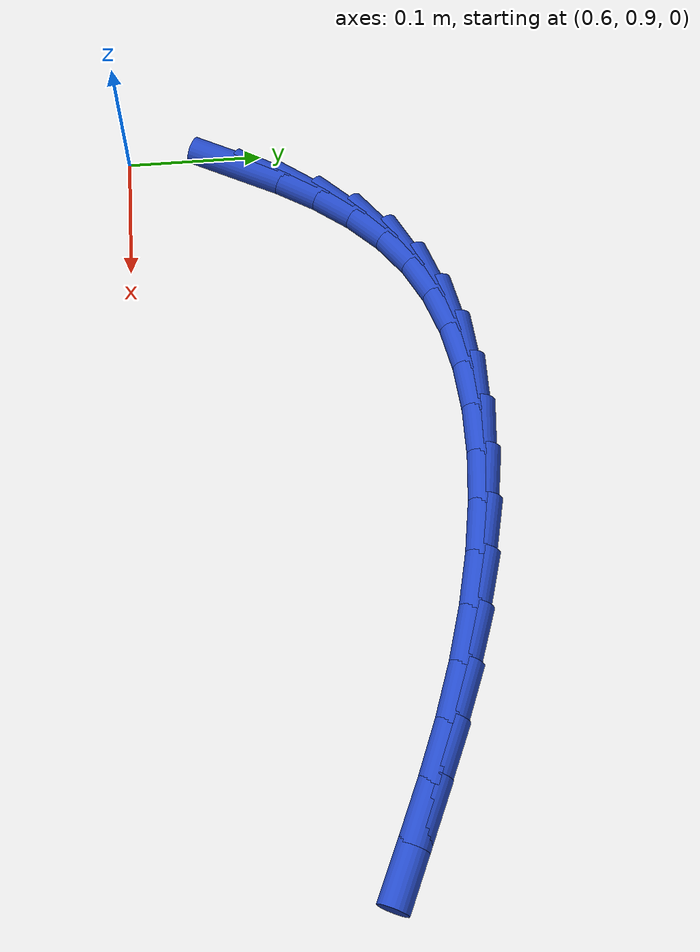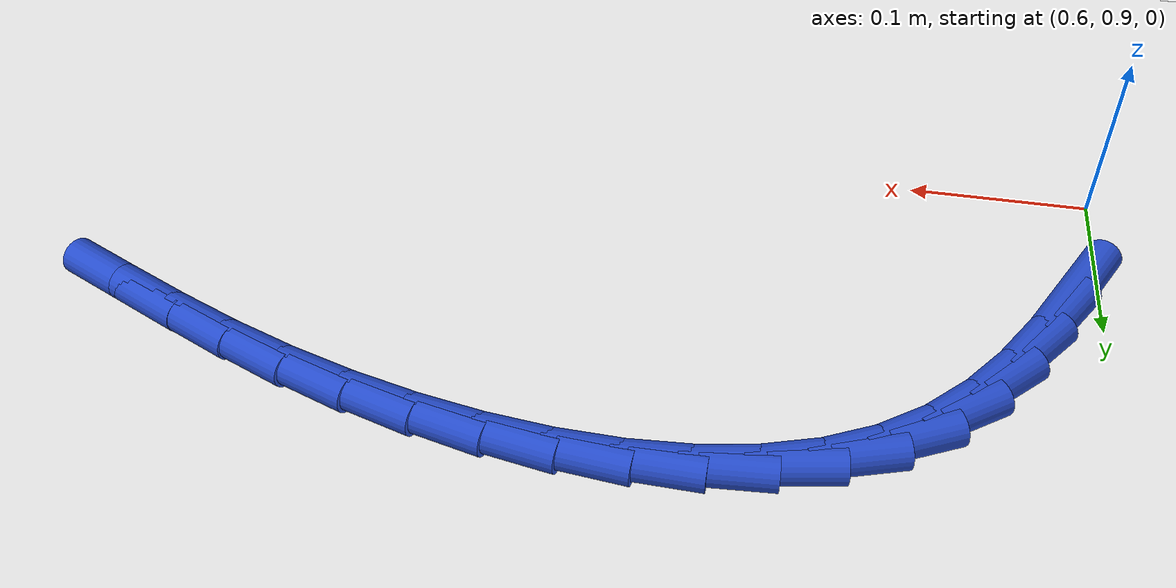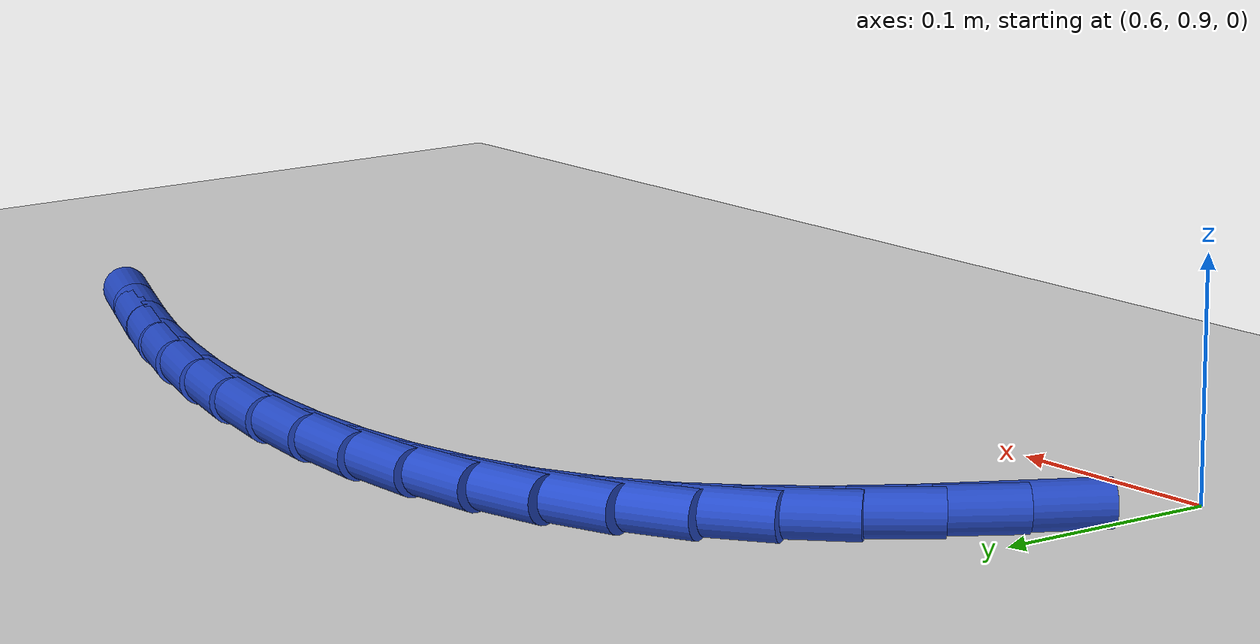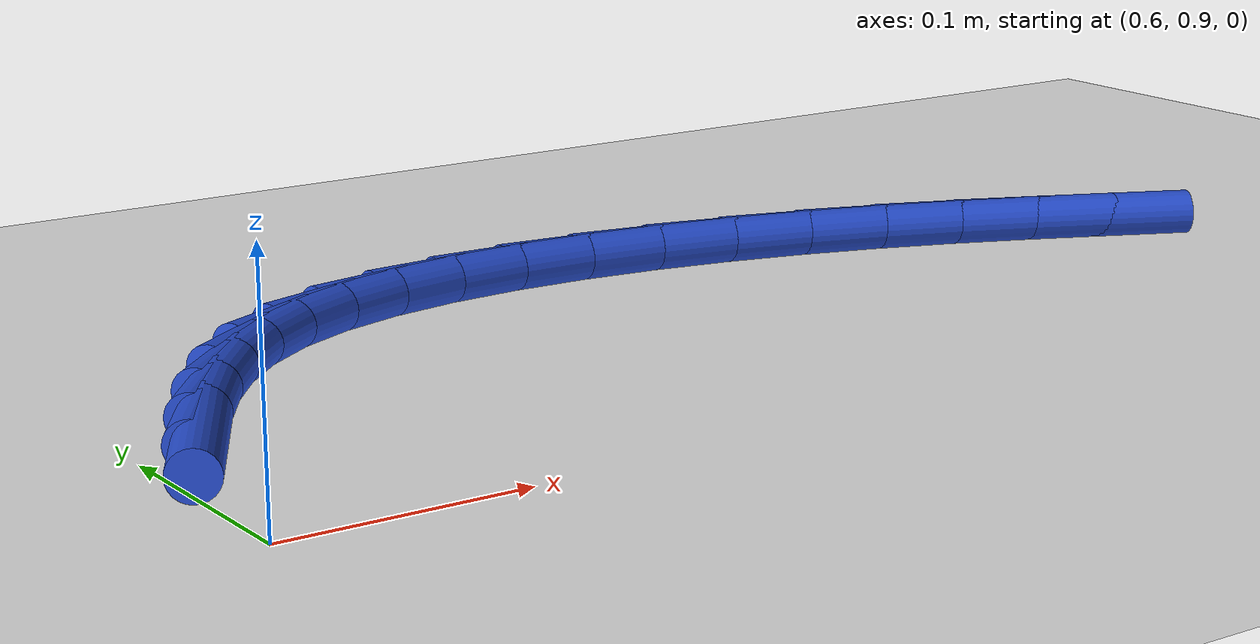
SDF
<sdf version="1.6">
 <world name="default">
  <model name="ground_plane">
   <static>1</static>
   <link name="link">
    <collision name="collision">
     <geometry><plane><normal>0 0 1</normal><size>100 100</size></plane></geometry>
     <surface><friction><ode><mu>100</mu><mu2>50</mu2></ode></friction></surface>
    </collision>
    <visual name="visual">
     <cast_shadows>0</cast_shadows>
     <geometry><plane><normal>0 0 1</normal><size>100 100</size></plane></geometry>
     <material>
      <script><uri>file://media/materials/scripts/gazebo.material</uri><name>Gazebo/WhiteGlow</name></script>
     </material>
    </visual>
   </link>
  </model>
  <model name="line">
   <link name="link_36">
    <pose>0.6163876511271378 0.9847912197336722 0.01 0 1.57 1.0728419619575362</pose>
    <collision name="collision">
     <geometry><cylinder><radius>0.01</radius><length>0.08</length></cylinder></geometry>
    </collision>
    <visual name="visual">
     <material>
      <script><name>Gazebo/Blue</name><uri>file://media/materials/scripts/gazebo.material</uri></script>
     </material>
     <geometry><cylinder><radius>0.01</radius><length>0.08</length></cylinder></geometry>
    </visual>
   </link>
   <link name="link_37">
    <pose>0.6322509721835169 1.0139705472028895 0.01 0 1.57 1.0003422529258295</pose>
    <collision name="collision">
     <geometry><cylinder><radius>0.01</radius><length>0.08</length></cylinder></geometry>
    </collision>
    <visual name="visual">
     <material>
      <script><name>Gazebo/Blue</name><uri>file://media/materials/scripts/gazebo.material</uri></script>
     </material>
     <geometry><cylinder><radius>0.01</radius><length>0.08</length></cylinder></geometry>
    </visual>
   </link>
   <link name="link_38">
    <pose>0.6495513222189545 1.0409345396289647 0.01 0 1.57 0.9010492410780814</pose>
    <collision name="collision">
     <geometry><cylinder><radius>0.01</radius><length>0.08</length></cylinder></geometry>
    </collision>
    <visual name="visual">
     <material>
      <script><name>Gazebo/Blue</name><uri>file://media/materials/scripts/gazebo.material</uri></script>
     </material>
     <geometry><cylinder><radius>0.01</radius><length>0.08</length></cylinder></geometry>
    </visual>
   </link>
   <link name="link_39">
    <pose>0.6687119050694581 1.0651320037742291 0.01 0 1.57 0.7720665639344656</pose>
    <collision name="collision">
     <geometry><cylinder><radius>0.01</radius><length>0.08</length></cylinder></geometry>
    </collision>
    <visual name="visual">
     <material>
      <script><name>Gazebo/Blue</name><uri>file://media/materials/scripts/gazebo.material</uri></script>
     </material>
     <geometry><cylinder><radius>0.01</radius><length>0.08</length></cylinder></geometry>
    </visual>
   </link>
   <link name="link_40">
    <pose>0.6901559245710348 1.0860117464010144 0.01 0 1.57 0.6137972136080931</pose>
    <collision name="collision">
     <geometry><cylinder><radius>0.01</radius><length>0.08</length></cylinder></geometry>
    </collision>
    <visual name="visual">
     <material>
      <script><name>Gazebo/Blue</name><uri>file://media/materials/scripts/gazebo.material</uri></script>
     </material>
     <geometry><cylinder><radius>0.01</radius><length>0.08</length></cylinder></geometry>
    </visual>
   </link>
   <link name="link_41">
    <pose>0.7143033924844925 1.1030257150771983 0.01 0 1.57 0.4451304729784368</pose>
    <collision name="collision">
     <geometry><cylinder><radius>0.01</radius><length>0.08</length></cylinder></geometry>
    </collision>
    <visual name="visual">
     <material>
      <script><name>Gazebo/Blue</name><uri>file://media/materials/scripts/gazebo.material</uri></script>
     </material>
     <geometry><cylinder><radius>0.01</radius><length>0.08</length></cylinder></geometry>
    </visual>
   </link>
   <link name="link_42">
    <pose>0.7412938163416424 1.1159018562687966 0.01 0 1.57 0.29489687600832765</pose>
    <collision name="collision">
     <geometry><cylinder><radius>0.01</radius><length>0.08</length></cylinder></geometry>
    </collision>
    <visual name="visual">
     <material>
      <script><name>Gazebo/Blue</name><uri>file://media/materials/scripts/gazebo.material</uri></script>
     </material>
     <geometry><cylinder><radius>0.01</radius><length>0.08</length></cylinder></geometry>
    </visual>
   </link>
   <link name="link_43">
    <pose>0.7707711569409348 1.1248557039298024 0.01 0 1.57 0.16629822384729626</pose>
    <collision name="collision">
     <geometry><cylinder><radius>0.01</radius><length>0.08</length></cylinder></geometry>
    </collision>
    <visual name="visual">
     <material>
      <script><name>Gazebo/Blue</name><uri>file://media/materials/scripts/gazebo.material</uri></script>
     </material>
     <geometry><cylinder><radius>0.01</radius><length>0.08</length></cylinder></geometry>
    </visual>
   </link>
   <link name="link_44">
    <pose>0.8023287581900675 1.1301525959195724 0.01 0 1.57 0.057271187827695885</pose>
    <collision name="collision">
     <geometry><cylinder><radius>0.01</radius><length>0.08</length></cylinder></geometry>
    </collision>
    <visual name="visual">
     <material>
      <script><name>Gazebo/Blue</name><uri>file://media/materials/scripts/gazebo.material</uri></script>
     </material>
     <geometry><cylinder><radius>0.01</radius><length>0.08</length></cylinder></geometry>
    </visual>
   </link>
   <link name="link_45">
    <pose>0.8355599639967382 1.1320578700974642 0.01 0 1.57 -0.03537859737396286</pose>
    <collision name="collision">
     <geometry><cylinder><radius>0.01</radius><length>0.08</length></cylinder></geometry>
    </collision>
    <visual name="visual">
     <material>
      <script><name>Gazebo/Blue</name><uri>file://media/materials/scripts/gazebo.material</uri></script>
     </material>
     <geometry><cylinder><radius>0.01</radius><length>0.08</length></cylinder></geometry>
    </visual>
   </link>
   <link name="link_46">
    <pose>0.8700581182686442 1.1308368643228346 0.01 0 1.57 -0.11493597282656826</pose>
    <collision name="collision">
     <geometry><cylinder><radius>0.01</radius><length>0.08</length></cylinder></geometry>
    </collision>
    <visual name="visual">
     <material>
      <script><name>Gazebo/Blue</name><uri>file://media/materials/scripts/gazebo.material</uri></script>
     </material>
     <geometry><cylinder><radius>0.01</radius><length>0.08</length></cylinder></geometry>
    </visual>
   </link>
   <link name="link_47">
    <pose>0.9054165649134827 1.12675491645504 0.01 0 1.57 -0.18434392155907342</pose>
    <collision name="collision">
     <geometry><cylinder><radius>0.01</radius><length>0.08</length></cylinder></geometry>
    </collision>
    <visual name="visual">
     <material>
      <script><name>Gazebo/Blue</name><uri>file://media/materials/scripts/gazebo.material</uri></script>
     </material>
     <geometry><cylinder><radius>0.01</radius><length>0.08</length></cylinder></geometry>
    </visual>
   </link>
   <link name="link_48">
    <pose>0.9412286478389515 1.1200773643534379 0.01 0 1.57 -0.24610832803351923</pose>
    <collision name="collision">
     <geometry><cylinder><radius>0.01</radius><length>0.08</length></cylinder></geometry>
    </collision>
    <visual name="visual">
     <material>
      <script><name>Gazebo/Blue</name><uri>file://media/materials/scripts/gazebo.material</uri></script>
     </material>
     <geometry><cylinder><radius>0.01</radius><length>0.08</length></cylinder></geometry>
    </visual>
   </link>
   <link name="link_49">
    <pose>0.9770877109527485 1.1110695458773852 0.01 0 1.57 -0.3023506868403747</pose>
    <collision name="collision">
     <geometry><cylinder><radius>0.01</radius><length>0.08</length></cylinder></geometry>
    </collision>
    <visual name="visual">
     <material>
      <script><name>Gazebo/Blue</name><uri>file://media/materials/scripts/gazebo.material</uri></script>
     </material>
     <geometry><cylinder><radius>0.01</radius><length>0.08</length></cylinder></geometry>
    </visual>
   </link>
   <link name="link_50">
    <pose>1.0125870981625706 1.0999967988862385 0.01 0 1.57 -0.35491025318495983</pose>
    <collision name="collision">
     <geometry><cylinder><radius>0.01</radius><length>0.08</length></cylinder></geometry>
    </collision>
    <visual name="visual">
     <material>
      <script><name>Gazebo/Blue</name><uri>file://media/materials/scripts/gazebo.material</uri></script>
     </material>
     <geometry><cylinder><radius>0.01</radius><length>0.08</length></cylinder></geometry>
    </visual>
   </link>
   <link name="link_51">
    <pose>1.0473202879229055 1.087124572644747 0.01 0 1.57 -0.40133344969270723</pose>
    <collision name="collision">
     <geometry><cylinder><radius>0.01</radius><length>0.08</length></cylinder></geometry>
    </collision>
    <visual name="visual">
     <material>
      <script><name>Gazebo/Blue</name><uri>file://media/materials/scripts/gazebo.material</uri></script>
     </material>
     <geometry><cylinder><radius>0.01</radius><length>0.08</length></cylinder></geometry>
    </visual>
   </link>
   <link name="link_52">
    <pose>1.0810119788744577 1.072826967365465 0.01 0 1.57 -0.4304201294191563</pose>
    <collision name="collision">
     <geometry><cylinder><radius>0.01</radius><length>0.08</length></cylinder></geometry>
    </collision>
    <visual name="visual">
     <material>
      <script><name>Gazebo/Blue</name><uri>file://media/materials/scripts/gazebo.material</uri></script>
     </material>
     <geometry><cylinder><radius>0.01</radius><length>0.08</length></cylinder></geometry>
    </visual>
   </link>
   <link name="link_53">
    <pose>1.1137633748970166 1.057789831416926 0.01 0 1.57 -0.43948715836565483</pose>
    <collision name="collision">
     <geometry><cylinder><radius>0.01</radius><length>0.08</length></cylinder></geometry>
    </collision>
    <visual name="visual">
     <material>
      <script><name>Gazebo/Blue</name><uri>file://media/materials/scripts/gazebo.material</uri></script>
     </material>
     <geometry><cylinder><radius>0.01</radius><length>0.08</length></cylinder></geometry>
    </visual>
   </link>
  </model>
 </world>
</sdf>
